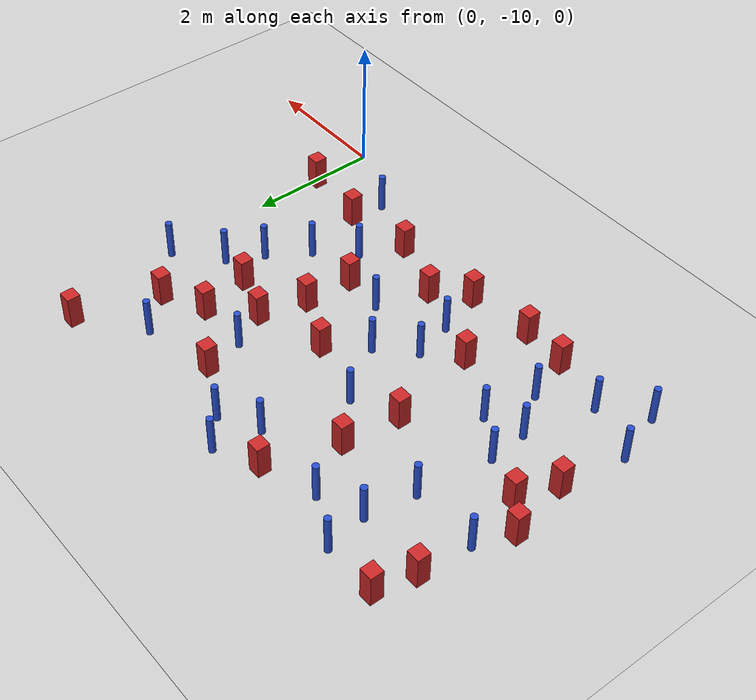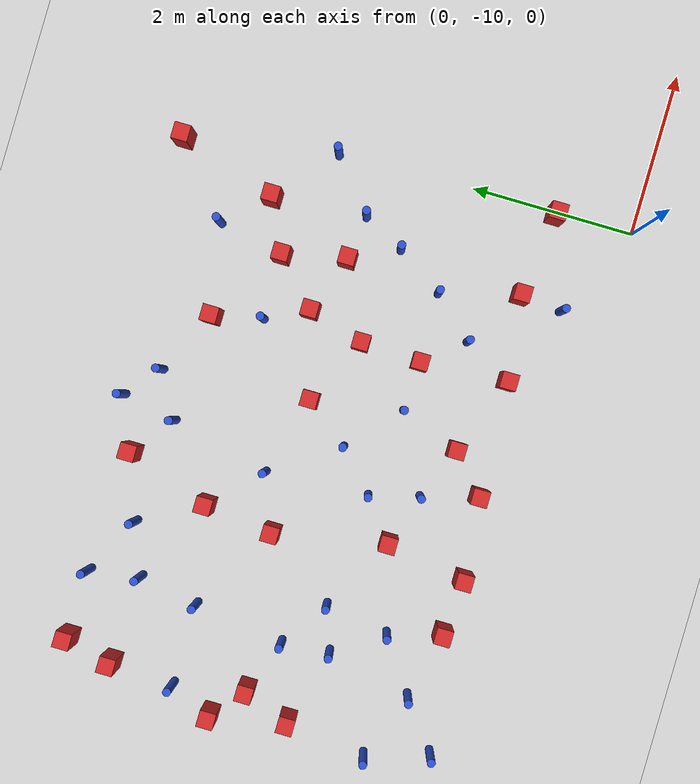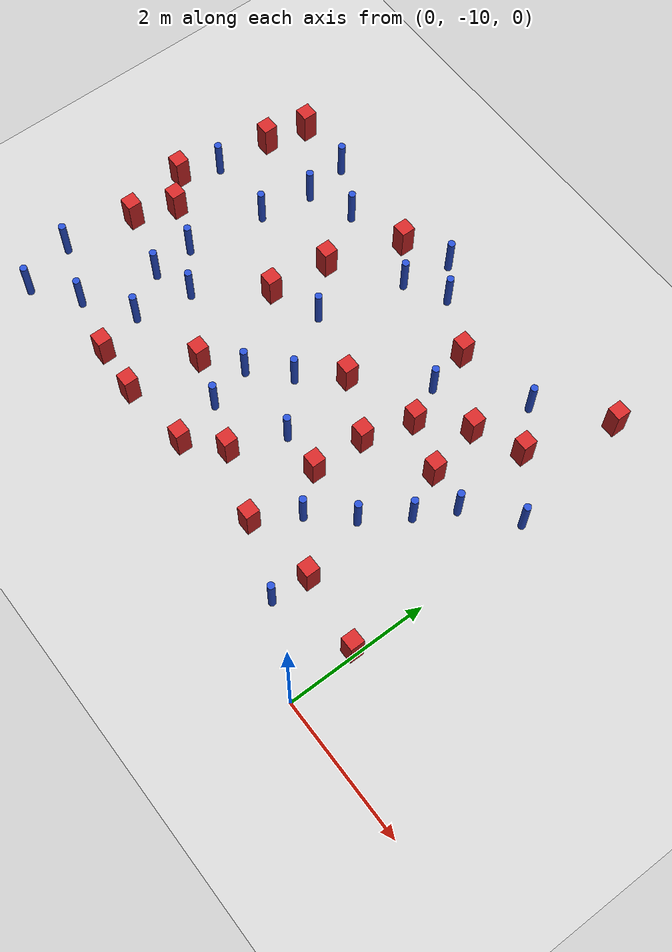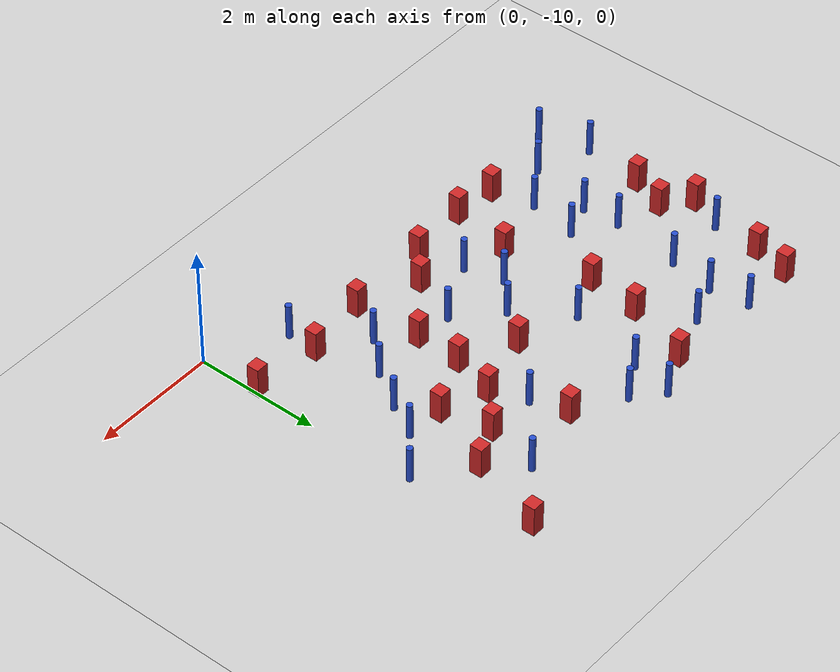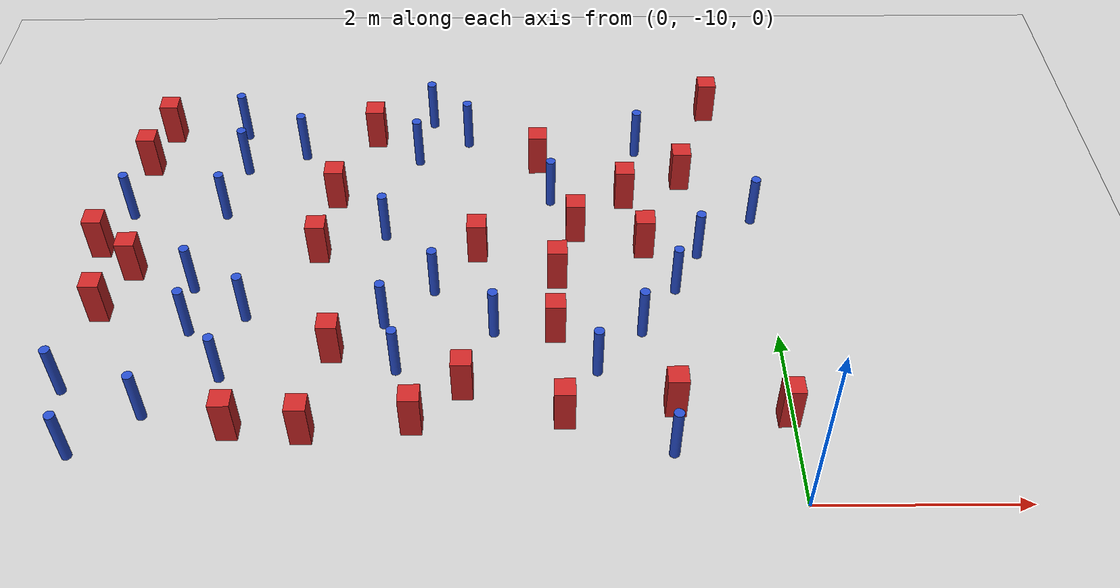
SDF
<sdf version="1.6">
 <world name="default">
  <model name="ground_plane">
   <static>1</static>
   <link name="link">
    <collision name="collision">
     <geometry><plane><normal>0 0 1</normal><size>100 100</size></plane></geometry>
     <surface><friction><ode><mu>100</mu><mu2>50</mu2></ode></friction></surface>
    </collision>
    <visual name="visual">
     <cast_shadows>0</cast_shadows>
     <geometry><plane><normal>0 0 1</normal><size>100 100</size></plane></geometry>
     <material>
      <ambient>1.0 1.0 1.0 1.0</ambient>
      <diffuse>0.8 0.8 0.8 1.0</diffuse>
      <specular>0.01 0.01 0.01 1.000000</specular>
     </material>
    </visual>
   </link>
  </model>
  <model name="square_post_obstacle1">
   <static>true</static>
   <pose>-4.67498980944 -6.82831575101 1.91545236811e-07 -7.35059704564e-06 1.12565212e-07 2.39332434364e-05</pose>
   <link name="link">
    <pose>0 0 0.25 0 -0 0</pose>
    <inertial>
     <mass>100</mass>
     <inertia>
      <ixx>0.166667</ixx>
      <ixy>0</ixy>
      <ixz>0</ixz>
      <iyy>0.166667</iyy>
      <iyz>0</iyz>
      <izz>0.166667</izz>
     </inertia>
    </inertial>
    <collision name="collision"><geometry><box><size>.2 .2 .5</size></box></geometry></collision>
    <visual name="visual">
     <geometry><box><size>.2 .2 .5</size></box></geometry>
     <material>
      <script><name>Gazebo/Red</name><uri>file://media/materials/scripts/gazebo.material</uri></script>
     </material>
    </visual>
   </link>
  </model>
  <model name="square_post_obstacle5">
   <static>true</static>
   <pose>-0.0569344833062 -9.03164974831 1.91545236811e-07 -7.35059704564e-06 1.12565212e-07 2.39332434364e-05</pose>
   <link name="link">
    <pose>0 0 0.25 0 -0 0</pose>
    <inertial>
     <mass>100</mass>
     <inertia>
      <ixx>0.166667</ixx>
      <ixy>0</ixy>
      <ixz>0</ixz>
      <iyy>0.166667</iyy>
      <iyz>0</iyz>
      <izz>0.166667</izz>
     </inertia>
    </inertial>
    <collision name="collision"><geometry><box><size>.2 .2 .5</size></box></geometry></collision>
    <visual name="visual">
     <geometry><box><size>.2 .2 .5</size></box></geometry>
     <material>
      <script><name>Gazebo/Red</name><uri>file://media/materials/scripts/gazebo.material</uri></script>
     </material>
    </visual>
   </link>
  </model>
  <model name="pole_obstacle12">
   <static>true</static>
   <pose>-5.4626077575 -8.49701745886 7.38925637345e-09 -8.471706928e-08 1.24976765081e-08 -1.74513093015e-07</pose>
   <link name="link">
    <pose>0 0 0.3 0 -0 0</pose>
    <inertial>
     <mass>1</mass>
     <inertia><ixx>0.145833</ixx><ixy>0</ixy><ixz>0</ixz><iyy>0.145833</iyy><iyz>0</iyz><izz>0.125</izz></inertia>
    </inertial>
    <collision name="collision">
     <geometry><cylinder><radius>0.05</radius><length>.6</length></cylinder></geometry>
    </collision>
    <visual name="visual">
     <geometry><cylinder><radius>0.05</radius><length>.6</length></cylinder></geometry>
     <material>
      <script><name>Gazebo/Blue</name><uri>file://media/materials/scripts/gazebo.material</uri></script>
     </material>
    </visual>
   </link>
  </model>
  <model name="square_post_obstacle12">
   <static>true</static>
   <pose>-1.10398348452 -8.89840903795 1.91545236811e-07 -7.35059704564e-06 1.12565212e-07 2.39332434364e-05</pose>
   <link name="link">
    <pose>0 0 0.25 0 -0 0</pose>
    <inertial>
     <mass>100</mass>
     <inertia>
      <ixx>0.166667</ixx>
      <ixy>0</ixy>
      <ixz>0</ixz>
      <iyy>0.166667</iyy>
      <iyz>0</iyz>
      <izz>0.166667</izz>
     </inertia>
    </inertial>
    <collision name="collision"><geometry><box><size>.2 .2 .5</size></box></geometry></collision>
    <visual name="visual">
     <geometry><box><size>.2 .2 .5</size></box></geometry>
     <material>
      <script><name>Gazebo/Red</name><uri>file://media/materials/scripts/gazebo.material</uri></script>
     </material>
    </visual>
   </link>
  </model>
  <model name="square_post_obstacle15">
   <static>true</static>
   <pose>-0.806000199674 -5.70891678703 1.91545236811e-07 -7.35059704564e-06 1.12565212e-07 2.39332434364e-05</pose>
   <link name="link">
    <pose>0 0 0.25 0 -0 0</pose>
    <inertial>
     <mass>100</mass>
     <inertia>
      <ixx>0.166667</ixx>
      <ixy>0</ixy>
      <ixz>0</ixz>
      <iyy>0.166667</iyy>
      <iyz>0</iyz>
      <izz>0.166667</izz>
     </inertia>
    </inertial>
    <collision name="collision"><geometry><box><size>.2 .2 .5</size></box></geometry></collision>
    <visual name="visual">
     <geometry><box><size>.2 .2 .5</size></box></geometry>
     <material>
      <script><name>Gazebo/Red</name><uri>file://media/materials/scripts/gazebo.material</uri></script>
     </material>
    </visual>
   </link>
  </model>
  <model name="pole_obstacle29">
   <static>true</static>
   <pose>-0.0772566071916 -6.3267778482 7.38925637345e-09 -8.47170692799e-08 1.24976765047e-08 -1.74513093018e-07</pose>
   <link name="link">
    <pose>0 0 0.3 0 -0 0</pose>
    <inertial>
     <mass>1</mass>
     <inertia><ixx>0.145833</ixx><ixy>0</ixy><ixz>0</ixz><iyy>0.145833</iyy><iyz>0</iyz><izz>0.125</izz></inertia>
    </inertial>
    <collision name="collision">
     <geometry><cylinder><radius>0.05</radius><length>.6</length></cylinder></geometry>
    </collision>
    <visual name="visual">
     <geometry><cylinder><radius>0.05</radius><length>.6</length></cylinder></geometry>
     <material>
      <script><name>Gazebo/Blue</name><uri>file://media/materials/scripts/gazebo.material</uri></script>
     </material>
    </visual>
   </link>
  </model>
  <model name="square_post_obstacle22">
   <static>true</static>
   <pose>-4.57320922168 -5.97788511213 1.91545236811e-07 -7.35059704564e-06 1.12565212e-07 2.39332434364e-05</pose>
   <link name="link">
    <pose>0 0 0.25 0 -0 0</pose>
    <inertial>
     <mass>100</mass>
     <inertia>
      <ixx>0.166667</ixx>
      <ixy>0</ixy>
      <ixz>0</ixz>
      <iyy>0.166667</iyy>
      <iyz>0</iyz>
      <izz>0.166667</izz>
     </inertia>
    </inertial>
    <collision name="collision"><geometry><box><size>.2 .2 .5</size></box></geometry></collision>
    <visual name="visual">
     <geometry><box><size>.2 .2 .5</size></box></geometry>
     <material>
      <script><name>Gazebo/Red</name><uri>file://media/materials/scripts/gazebo.material</uri></script>
     </material>
    </visual>
   </link>
  </model>
  <model name="pole_obstacle31">
   <static>true</static>
   <pose>-5.63412295739 -5.46343741275 7.38925637345e-09 -8.47170692796e-08 1.24976764786e-08 -1.74513093032e-07</pose>
   <link name="link">
    <pose>0 0 0.3 0 -0 0</pose>
    <inertial>
     <mass>1</mass>
     <inertia><ixx>0.145833</ixx><ixy>0</ixy><ixz>0</ixz><iyy>0.145833</iyy><iyz>0</iyz><izz>0.125</izz></inertia>
    </inertial>
    <collision name="collision">
     <geometry><cylinder><radius>0.05</radius><length>.6</length></cylinder></geometry>
    </collision>
    <visual name="visual">
     <geometry><cylinder><radius>0.05</radius><length>.6</length></cylinder></geometry>
     <material>
      <script><name>Gazebo/Blue</name><uri>file://media/materials/scripts/gazebo.material</uri></script>
     </material>
    </visual>
   </link>
  </model>
  <model name="pole_obstacle37">
   <static>true</static>
   <pose>-5.91470820341 -7.31046517119 7.38925637345e-09 -8.47170692796e-08 1.24976764786e-08 -1.74513093032e-07</pose>
   <link name="link">
    <pose>0 0 0.3 0 -0 0</pose>
    <inertial>
     <mass>1</mass>
     <inertia><ixx>0.145833</ixx><ixy>0</ixy><ixz>0</ixz><iyy>0.145833</iyy><iyz>0</iyz><izz>0.125</izz></inertia>
    </inertial>
    <collision name="collision">
     <geometry><cylinder><radius>0.05</radius><length>.6</length></cylinder></geometry>
    </collision>
    <visual name="visual">
     <geometry><cylinder><radius>0.05</radius><length>.6</length></cylinder></geometry>
     <material>
      <script><name>Gazebo/Blue</name><uri>file://media/materials/scripts/gazebo.material</uri></script>
     </material>
    </visual>
   </link>
  </model>
  <model name="square_post_obstacle33">
   <static>true</static>
   <pose>-3.5673624059 -9.09396639698 1.91545236811e-07 -7.35059704564e-06 1.12565212e-07 2.39332434364e-05</pose>
   <link name="link">
    <pose>0 0 0.25 0 -0 0</pose>
    <inertial>
     <mass>100</mass>
     <inertia>
      <ixx>0.166667</ixx>
      <ixy>0</ixy>
      <ixz>0</ixz>
      <iyy>0.166667</iyy>
      <iyz>0</iyz>
      <izz>0.166667</izz>
     </inertia>
    </inertial>
    <collision name="collision"><geometry><box><size>.2 .2 .5</size></box></geometry></collision>
    <visual name="visual">
     <geometry><box><size>.2 .2 .5</size></box></geometry>
     <material>
      <script><name>Gazebo/Red</name><uri>file://media/materials/scripts/gazebo.material</uri></script>
     </material>
    </visual>
   </link>
  </model>
  <model name="pole_obstacle48">
   <static>true</static>
   <pose>-3.44367314999 -7.36795932282 7.38925637345e-09 -8.47170692798e-08 1.24976765033e-08 -1.74513093019e-07</pose>
   <link name="link">
    <pose>0 0 0.3 0 -0 0</pose>
    <inertial>
     <mass>1</mass>
     <inertia><ixx>0.145833</ixx><ixy>0</ixy><ixz>0</ixz><iyy>0.145833</iyy><iyz>0</iyz><izz>0.125</izz></inertia>
    </inertial>
    <collision name="collision">
     <geometry><cylinder><radius>0.05</radius><length>.6</length></cylinder></geometry>
    </collision>
    <visual name="visual">
     <geometry><cylinder><radius>0.05</radius><length>.6</length></cylinder></geometry>
     <material>
      <script><name>Gazebo/Blue</name><uri>file://media/materials/scripts/gazebo.material</uri></script>
     </material>
    </visual>
   </link>
  </model>
  <model name="pole_obstacle52">
   <static>true</static>
   <pose>-5.7300568943 -4.84075058531 7.38925637345e-09 -8.47170692796e-08 1.24976764786e-08 -1.74513093032e-07</pose>
   <link name="link">
    <pose>0 0 0.3 0 -0 0</pose>
    <inertial>
     <mass>1</mass>
     <inertia><ixx>0.145833</ixx><ixy>0</ixy><ixz>0</ixz><iyy>0.145833</iyy><iyz>0</iyz><izz>0.125</izz></inertia>
    </inertial>
    <collision name="collision">
     <geometry><cylinder><radius>0.05</radius><length>.6</length></cylinder></geometry>
    </collision>
    <visual name="visual">
     <geometry><cylinder><radius>0.05</radius><length>.6</length></cylinder></geometry>
     <material>
      <script><name>Gazebo/Blue</name><uri>file://media/materials/scripts/gazebo.material</uri></script>
     </material>
    </visual>
   </link>
  </model>
  <model name="pole_obstacle61">
   <static>true</static>
   <pose>-0.705357612804 -6.8557861656 7.38925637345e-09 -8.471706928e-08 1.24976765086e-08 -1.74513093015e-07</pose>
   <link name="link">
    <pose>0 0 0.3 0 -0 0</pose>
    <inertial>
     <mass>1</mass>
     <inertia><ixx>0.145833</ixx><ixy>0</ixy><ixz>0</ixz><iyy>0.145833</iyy><iyz>0</iyz><izz>0.125</izz></inertia>
    </inertial>
    <collision name="collision">
     <geometry><cylinder><radius>0.05</radius><length>.6</length></cylinder></geometry>
    </collision>
    <visual name="visual">
     <geometry><cylinder><radius>0.05</radius><length>.6</length></cylinder></geometry>
     <material>
      <script><name>Gazebo/Blue</name><uri>file://media/materials/scripts/gazebo.material</uri></script>
     </material>
    </visual>
   </link>
  </model>
  <model name="square_post_obstacle47">
   <static>true</static>
   <pose>-4.21569209448 -4.94015472353 1.91545236811e-07 -7.35059704564e-06 1.12565212e-07 2.39332434364e-05</pose>
   <link name="link">
    <pose>0 0 0.25 0 -0 0</pose>
    <inertial>
     <mass>100</mass>
     <inertia>
      <ixx>0.166667</ixx>
      <ixy>0</ixy>
      <ixz>0</ixz>
      <iyy>0.166667</iyy>
      <iyz>0</iyz>
      <izz>0.166667</izz>
     </inertia>
    </inertial>
    <collision name="collision"><geometry><box><size>.2 .2 .5</size></box></geometry></collision>
    <visual name="visual">
     <geometry><box><size>.2 .2 .5</size></box></geometry>
     <material>
      <script><name>Gazebo/Red</name><uri>file://media/materials/scripts/gazebo.material</uri></script>
     </material>
    </visual>
   </link>
  </model>
  <model name="square_post_obstacle56">
   <static>true</static>
   <pose>-2.21653575165 -7.96495628618 1.91545236811e-07 -7.35059704564e-06 1.12565212e-07 2.39332434364e-05</pose>
   <link name="link">
    <pose>0 0 0.25 0 -0 0</pose>
    <inertial>
     <mass>100</mass>
     <inertia>
      <ixx>0.166667</ixx>
      <ixy>0</ixy>
      <ixz>0</ixz>
      <iyy>0.166667</iyy>
      <iyz>0</iyz>
      <izz>0.166667</izz>
     </inertia>
    </inertial>
    <collision name="collision"><geometry><box><size>.2 .2 .5</size></box></geometry></collision>
    <visual name="visual">
     <geometry><box><size>.2 .2 .5</size></box></geometry>
     <material>
      <script><name>Gazebo/Red</name><uri>file://media/materials/scripts/gazebo.material</uri></script>
     </material>
    </visual>
   </link>
  </model>
  <model name="pole_obstacle73">
   <static>true</static>
   <pose>-1.35263235997 -7.94637558437 7.38925637345e-09 -8.47170692799e-08 1.24976765033e-08 -1.74513093018e-07</pose>
   <link name="link">
    <pose>0 0 0.3 0 -0 0</pose>
    <inertial>
     <mass>1</mass>
     <inertia><ixx>0.145833</ixx><ixy>0</ixy><ixz>0</ixz><iyy>0.145833</iyy><iyz>0</iyz><izz>0.125</izz></inertia>
    </inertial>
    <collision name="collision">
     <geometry><cylinder><radius>0.05</radius><length>.6</length></cylinder></geometry>
    </collision>
    <visual name="visual">
     <geometry><cylinder><radius>0.05</radius><length>.6</length></cylinder></geometry>
     <material>
      <script><name>Gazebo/Blue</name><uri>file://media/materials/scripts/gazebo.material</uri></script>
     </material>
    </visual>
   </link>
  </model>
  <model name="pole_obstacle84">
   <static>true</static>
   <pose>-5.76072703257 -6.19977281902 7.38925637345e-09 -8.47170692796e-08 1.24976764786e-08 -1.74513093032e-07</pose>
   <link name="link">
    <pose>0 0 0.3 0 -0 0</pose>
    <inertial>
     <mass>1</mass>
     <inertia><ixx>0.145833</ixx><ixy>0</ixy><ixz>0</ixz><iyy>0.145833</iyy><iyz>0</iyz><izz>0.125</izz></inertia>
    </inertial>
    <collision name="collision">
     <geometry><cylinder><radius>0.05</radius><length>.6</length></cylinder></geometry>
    </collision>
    <visual name="visual">
     <geometry><cylinder><radius>0.05</radius><length>.6</length></cylinder></geometry>
     <material>
      <script><name>Gazebo/Blue</name><uri>file://media/materials/scripts/gazebo.material</uri></script>
     </material>
    </visual>
   </link>
  </model>
  <model name="square_post_obstacle74">
   <static>true</static>
   <pose>-6.56219991522 -4.83039880466 1.91545236811e-07 -7.35059704564e-06 1.12565212e-07 2.39332434364e-05</pose>
   <link name="link">
    <pose>0 0 0.25 0 -0 0</pose>
    <inertial>
     <mass>100</mass>
     <inertia>
      <ixx>0.166667</ixx>
      <ixy>0</ixy>
      <ixz>0</ixz>
      <iyy>0.166667</iyy>
      <iyz>0</iyz>
      <izz>0.166667</izz>
     </inertia>
    </inertial>
    <collision name="collision"><geometry><box><size>.2 .2 .5</size></box></geometry></collision>
    <visual name="visual">
     <geometry><box><size>.2 .2 .5</size></box></geometry>
     <material>
      <script><name>Gazebo/Red</name><uri>file://media/materials/scripts/gazebo.material</uri></script>
     </material>
    </visual>
   </link>
  </model>
  <model name="pole_obstacle90">
   <static>true</static>
   <pose>-5.32653967156 -7.70868877962 7.38925637345e-09 -8.47170692796e-08 1.24976764786e-08 -1.74513093032e-07</pose>
   <link name="link">
    <pose>0 0 0.3 0 -0 0</pose>
    <inertial>
     <mass>1</mass>
     <inertia><ixx>0.145833</ixx><ixy>0</ixy><ixz>0</ixz><iyy>0.145833</iyy><iyz>0</iyz><izz>0.125</izz></inertia>
    </inertial>
    <collision name="collision">
     <geometry><cylinder><radius>0.05</radius><length>.6</length></cylinder></geometry>
    </collision>
    <visual name="visual">
     <geometry><cylinder><radius>0.05</radius><length>.6</length></cylinder></geometry>
     <material>
      <script><name>Gazebo/Blue</name><uri>file://media/materials/scripts/gazebo.material</uri></script>
     </material>
    </visual>
   </link>
  </model>
  <model name="pole_obstacle93">
   <static>true</static>
   <pose>-1.81551912065 -8.44724715865 7.38925637345e-09 -8.47170692798e-08 1.24976764881e-08 -1.74513093027e-07</pose>
   <link name="link">
    <pose>0 0 0.3 0 -0 0</pose>
    <inertial>
     <mass>1</mass>
     <inertia><ixx>0.145833</ixx><ixy>0</ixy><ixz>0</ixz><iyy>0.145833</iyy><iyz>0</iyz><izz>0.125</izz></inertia>
    </inertial>
    <collision name="collision">
     <geometry><cylinder><radius>0.05</radius><length>.6</length></cylinder></geometry>
    </collision>
    <visual name="visual">
     <geometry><cylinder><radius>0.05</radius><length>.6</length></cylinder></geometry>
     <material>
      <script><name>Gazebo/Blue</name><uri>file://media/materials/scripts/gazebo.material</uri></script>
     </material>
    </visual>
   </link>
  </model>
  <model name="square_post_obstacle88">
   <static>true</static>
   <pose>-2.37762121006 -5.41292113218 1.91545236811e-07 -7.35059704564e-06 1.12565212e-07 2.39332434364e-05</pose>
   <link name="link">
    <pose>0 0 0.25 0 -0 0</pose>
    <inertial>
     <mass>100</mass>
     <inertia>
      <ixx>0.166667</ixx>
      <ixy>0</ixy>
      <ixz>0</ixz>
      <iyy>0.166667</iyy>
      <iyz>0</iyz>
      <izz>0.166667</izz>
     </inertia>
    </inertial>
    <collision name="collision"><geometry><box><size>.2 .2 .5</size></box></geometry></collision>
    <visual name="visual">
     <geometry><box><size>.2 .2 .5</size></box></geometry>
     <material>
      <script><name>Gazebo/Red</name><uri>file://media/materials/scripts/gazebo.material</uri></script>
     </material>
    </visual>
   </link>
  </model>
  <model name="pole_obstacle96">
   <static>true</static>
   <pose>-2.23942535714 -6.00915001634 7.38925637345e-09 -8.47170692798e-08 1.24976765033e-08 -1.74513093019e-07</pose>
   <link name="link">
    <pose>0 0 0.3 0 -0 0</pose>
    <inertial>
     <mass>1</mass>
     <inertia><ixx>0.145833</ixx><ixy>0</ixy><ixz>0</ixz><iyy>0.145833</iyy><iyz>0</iyz><izz>0.125</izz></inertia>
    </inertial>
    <collision name="collision">
     <geometry><cylinder><radius>0.05</radius><length>.6</length></cylinder></geometry>
    </collision>
    <visual name="visual">
     <geometry><cylinder><radius>0.05</radius><length>.6</length></cylinder></geometry>
     <material>
      <script><name>Gazebo/Blue</name><uri>file://media/materials/scripts/gazebo.material</uri></script>
     </material>
    </visual>
   </link>
  </model>
  <model name="pole_obstacle105">
   <static>true</static>
   <pose>-3.16610420422 -5.00560858575 7.38925637345e-09 -8.47170692798e-08 1.24976765033e-08 -1.74513093019e-07</pose>
   <link name="link">
    <pose>0 0 0.3 0 -0 0</pose>
    <inertial>
     <mass>1</mass>
     <inertia><ixx>0.145833</ixx><ixy>0</ixy><ixz>0</ixz><iyy>0.145833</iyy><iyz>0</iyz><izz>0.125</izz></inertia>
    </inertial>
    <collision name="collision">
     <geometry><cylinder><radius>0.05</radius><length>.6</length></cylinder></geometry>
    </collision>
    <visual name="visual">
     <geometry><cylinder><radius>0.05</radius><length>.6</length></cylinder></geometry>
     <material>
      <script><name>Gazebo/Blue</name><uri>file://media/materials/scripts/gazebo.material</uri></script>
     </material>
    </visual>
   </link>
  </model>
  <model name="square_post_obstacle100">
   <static>true</static>
   <pose>-5.26530152345 -9.13641427341 1.91545236811e-07 -7.35059704564e-06 1.12565212e-07 2.39332434364e-05</pose>
   <link name="link">
    <pose>0 0 0.25 0 -0 0</pose>
    <inertial>
     <mass>100</mass>
     <inertia>
      <ixx>0.166667</ixx>
      <ixy>0</ixy>
      <ixz>0</ixz>
      <iyy>0.166667</iyy>
      <iyz>0</iyz>
      <izz>0.166667</izz>
     </inertia>
    </inertial>
    <collision name="collision"><geometry><box><size>.2 .2 .5</size></box></geometry></collision>
    <visual name="visual">
     <geometry><box><size>.2 .2 .5</size></box></geometry>
     <material>
      <script><name>Gazebo/Red</name><uri>file://media/materials/scripts/gazebo.material</uri></script>
     </material>
    </visual>
   </link>
  </model>
  <model name="pole_obstacle108">
   <static>true</static>
   <pose>-6.76949113717 -6.19482490507 7.38925637345e-09 -8.47170692796e-08 1.24976764786e-08 -1.74513093032e-07</pose>
   <link name="link">
    <pose>0 0 0.3 0 -0 0</pose>
    <inertial>
     <mass>1</mass>
     <inertia><ixx>0.145833</ixx><ixy>0</ixy><ixz>0</ixz><iyy>0.145833</iyy><iyz>0</iyz><izz>0.125</izz></inertia>
    </inertial>
    <collision name="collision">
     <geometry><cylinder><radius>0.05</radius><length>.6</length></cylinder></geometry>
    </collision>
    <visual name="visual">
     <geometry><cylinder><radius>0.05</radius><length>.6</length></cylinder></geometry>
     <material>
      <script><name>Gazebo/Blue</name><uri>file://media/materials/scripts/gazebo.material</uri></script>
     </material>
    </visual>
   </link>
  </model>
  <model name="pole_obstacle111">
   <static>true</static>
   <pose>-1.26920511881 -5.18857553138 7.38925637345e-09 -8.47170692799e-08 1.24976765033e-08 -1.74513093018e-07</pose>
   <link name="link">
    <pose>0 0 0.3 0 -0 0</pose>
    <inertial>
     <mass>1</mass>
     <inertia><ixx>0.145833</ixx><ixy>0</ixy><ixz>0</ixz><iyy>0.145833</iyy><iyz>0</iyz><izz>0.125</izz></inertia>
    </inertial>
    <collision name="collision">
     <geometry><cylinder><radius>0.05</radius><length>.6</length></cylinder></geometry>
    </collision>
    <visual name="visual">
     <geometry><cylinder><radius>0.05</radius><length>.6</length></cylinder></geometry>
     <material>
      <script><name>Gazebo/Blue</name><uri>file://media/materials/scripts/gazebo.material</uri></script>
     </material>
    </visual>
   </link>
  </model>
  <model name="square_post_obstacle111">
   <static>true</static>
   <pose>-2.14747889558 -9.03453597975 1.91545236811e-07 -7.35059704564e-06 1.12565212e-07 2.39332434364e-05</pose>
   <link name="link">
    <pose>0 0 0.25 0 -0 0</pose>
    <inertial>
     <mass>100</mass>
     <inertia>
      <ixx>0.166667</ixx>
      <ixy>0</ixy>
      <ixz>0</ixz>
      <iyy>0.166667</iyy>
      <iyz>0</iyz>
      <izz>0.166667</izz>
     </inertia>
    </inertial>
    <collision name="collision"><geometry><box><size>.2 .2 .5</size></box></geometry></collision>
    <visual name="visual">
     <geometry><box><size>.2 .2 .5</size></box></geometry>
     <material>
      <script><name>Gazebo/Red</name><uri>file://media/materials/scripts/gazebo.material</uri></script>
     </material>
    </visual>
   </link>
  </model>
  <model name="square_post_obstacle118">
   <static>true</static>
   <pose>-1.4409567332 -6.01534267105 1.91545236811e-07 -7.35059704564e-06 1.12565212e-07 2.39332434364e-05</pose>
   <link name="link">
    <pose>0 0 0.25 0 -0 0</pose>
    <inertial>
     <mass>100</mass>
     <inertia>
      <ixx>0.166667</ixx>
      <ixy>0</ixy>
      <ixz>0</ixz>
      <iyy>0.166667</iyy>
      <iyz>0</iyz>
      <izz>0.166667</izz>
     </inertia>
    </inertial>
    <collision name="collision"><geometry><box><size>.2 .2 .5</size></box></geometry></collision>
    <visual name="visual">
     <geometry><box><size>.2 .2 .5</size></box></geometry>
     <material>
      <script><name>Gazebo/Red</name><uri>file://media/materials/scripts/gazebo.material</uri></script>
     </material>
    </visual>
   </link>
  </model>
  <model name="pole_obstacle120">
   <static>true</static>
   <pose>-3.58205869978 -4.64731659598 7.38925637345e-09 -8.47170692794e-08 1.24976764468e-08 -1.7451309304e-07</pose>
   <link name="link">
    <pose>0 0 0.3 0 -0 0</pose>
    <inertial>
     <mass>1</mass>
     <inertia><ixx>0.145833</ixx><ixy>0</ixy><ixz>0</ixz><iyy>0.145833</iyy><iyz>0</iyz><izz>0.125</izz></inertia>
    </inertial>
    <collision name="collision">
     <geometry><cylinder><radius>0.05</radius><length>.6</length></cylinder></geometry>
    </collision>
    <visual name="visual">
     <geometry><cylinder><radius>0.05</radius><length>.6</length></cylinder></geometry>
     <material>
      <script><name>Gazebo/Blue</name><uri>file://media/materials/scripts/gazebo.material</uri></script>
     </material>
    </visual>
   </link>
  </model>
  <model name="pole_obstacle129">
   <static>true</static>
   <pose>-6.69728284218 -9.3980638872 7.38925637345e-09 -8.471706928e-08 1.24976765081e-08 -1.74513093015e-07</pose>
   <link name="link">
    <pose>0 0 0.3 0 -0 0</pose>
    <inertial>
     <mass>1</mass>
     <inertia><ixx>0.145833</ixx><ixy>0</ixy><ixz>0</ixz><iyy>0.145833</iyy><iyz>0</iyz><izz>0.125</izz></inertia>
    </inertial>
    <collision name="collision">
     <geometry><cylinder><radius>0.05</radius><length>.6</length></cylinder></geometry>
    </collision>
    <visual name="visual">
     <geometry><cylinder><radius>0.05</radius><length>.6</length></cylinder></geometry>
     <material>
      <script><name>Gazebo/Blue</name><uri>file://media/materials/scripts/gazebo.material</uri></script>
     </material>
    </visual>
   </link>
  </model>
  <model name="pole_obstacle141">
   <static>true</static>
   <pose>-2.82531869772 -7.9393461767 7.38925637345e-09 -8.47170692798e-08 1.24976765033e-08 -1.74513093019e-07</pose>
   <link name="link">
    <pose>0 0 0.3 0 -0 0</pose>
    <inertial>
     <mass>1</mass>
     <inertia><ixx>0.145833</ixx><ixy>0</ixy><ixz>0</ixz><iyy>0.145833</iyy><iyz>0</iyz><izz>0.125</izz></inertia>
    </inertial>
    <collision name="collision">
     <geometry><cylinder><radius>0.05</radius><length>.6</length></cylinder></geometry>
    </collision>
    <visual name="visual">
     <geometry><cylinder><radius>0.05</radius><length>.6</length></cylinder></geometry>
     <material>
      <script><name>Gazebo/Blue</name><uri>file://media/materials/scripts/gazebo.material</uri></script>
     </material>
    </visual>
   </link>
  </model>
  <model name="square_post_obstacle139">
   <static>true</static>
   <pose>-0.413697934901 -4.49266319689 1.91545236811e-07 -7.35059704564e-06 1.12565212e-07 2.39332434364e-05</pose>
   <link name="link">
    <pose>0 0 0.25 0 -0 0</pose>
    <inertial>
     <mass>100</mass>
     <inertia>
      <ixx>0.166667</ixx>
      <ixy>0</ixy>
      <ixz>0</ixz>
      <iyy>0.166667</iyy>
      <iyz>0</iyz>
      <izz>0.166667</izz>
     </inertia>
    </inertial>
    <collision name="collision"><geometry><box><size>.2 .2 .5</size></box></geometry></collision>
    <visual name="visual">
     <geometry><box><size>.2 .2 .5</size></box></geometry>
     <material>
      <script><name>Gazebo/Red</name><uri>file://media/materials/scripts/gazebo.material</uri></script>
     </material>
    </visual>
   </link>
  </model>
  <model name="square_post_obstacle140">
   <static>true</static>
   <pose>-6.70566130304 -5.41041761863 1.91545236811e-07 -7.35059704564e-06 1.12565212e-07 2.39332434364e-05</pose>
   <link name="link">
    <pose>0 0 0.25 0 -0 0</pose>
    <inertial>
     <mass>100</mass>
     <inertia>
      <ixx>0.166667</ixx>
      <ixy>0</ixy>
      <ixz>0</ixz>
      <iyy>0.166667</iyy>
      <iyz>0</iyz>
      <izz>0.166667</izz>
     </inertia>
    </inertial>
    <collision name="collision"><geometry><box><size>.2 .2 .5</size></box></geometry></collision>
    <visual name="visual">
     <geometry><box><size>.2 .2 .5</size></box></geometry>
     <material>
      <script><name>Gazebo/Red</name><uri>file://media/materials/scripts/gazebo.material</uri></script>
     </material>
    </visual>
   </link>
  </model>
  <model name="pole_obstacle149">
   <static>true</static>
   <pose>-0.975459394236 -7.36558238332 7.38925637345e-09 -8.47170692799e-08 1.2497676509e-08 -1.74513093015e-07</pose>
   <link name="link">
    <pose>0 0 0.3 0 -0 0</pose>
    <inertial>
     <mass>1</mass>
     <inertia><ixx>0.145833</ixx><ixy>0</ixy><ixz>0</ixz><iyy>0.145833</iyy><iyz>0</iyz><izz>0.125</izz></inertia>
    </inertial>
    <collision name="collision">
     <geometry><cylinder><radius>0.05</radius><length>.6</length></cylinder></geometry>
    </collision>
    <visual name="visual">
     <geometry><cylinder><radius>0.05</radius><length>.6</length></cylinder></geometry>
     <material>
      <script><name>Gazebo/Blue</name><uri>file://media/materials/scripts/gazebo.material</uri></script>
     </material>
    </visual>
   </link>
  </model>
  <model name="pole_obstacle153">
   <static>true</static>
   <pose>-5.86528783506 -7.89803661114 7.38925637345e-09 -8.47170692796e-08 1.24976764786e-08 -1.74513093032e-07</pose>
   <link name="link">
    <pose>0 0 0.3 0 -0 0</pose>
    <inertial>
     <mass>1</mass>
     <inertia><ixx>0.145833</ixx><ixy>0</ixy><ixz>0</ixz><iyy>0.145833</iyy><iyz>0</iyz><izz>0.125</izz></inertia>
    </inertial>
    <collision name="collision">
     <geometry><cylinder><radius>0.05</radius><length>.6</length></cylinder></geometry>
    </collision>
    <visual name="visual">
     <geometry><cylinder><radius>0.05</radius><length>.6</length></cylinder></geometry>
     <material>
      <script><name>Gazebo/Blue</name><uri>file://media/materials/scripts/gazebo.material</uri></script>
     </material>
    </visual>
   </link>
  </model>
  <model name="pole_obstacle159">
   <static>true</static>
   <pose>-3.92512927078 -7.8171857841 7.38925637345e-09 -8.47170692794e-08 1.24976764468e-08 -1.7451309304e-07</pose>
   <link name="link">
    <pose>0 0 0.3 0 -0 0</pose>
    <inertial>
     <mass>1</mass>
     <inertia><ixx>0.145833</ixx><ixy>0</ixy><ixz>0</ixz><iyy>0.145833</iyy><iyz>0</iyz><izz>0.125</izz></inertia>
    </inertial>
    <collision name="collision">
     <geometry><cylinder><radius>0.05</radius><length>.6</length></cylinder></geometry>
    </collision>
    <visual name="visual">
     <geometry><cylinder><radius>0.05</radius><length>.6</length></cylinder></geometry>
     <material>
      <script><name>Gazebo/Blue</name><uri>file://media/materials/scripts/gazebo.material</uri></script>
     </material>
    </visual>
   </link>
  </model>
  <model name="square_post_obstacle154">
   <static>true</static>
   <pose>-6.57184686783 -7.06440463111 1.91545236811e-07 -7.35059704564e-06 1.12565212e-07 2.39332434364e-05</pose>
   <link name="link">
    <pose>0 0 0.25 0 -0 0</pose>
    <inertial>
     <mass>100</mass>
     <inertia>
      <ixx>0.166667</ixx>
      <ixy>0</ixy>
      <ixz>0</ixz>
      <iyy>0.166667</iyy>
      <iyz>0</iyz>
      <izz>0.166667</izz>
     </inertia>
    </inertial>
    <collision name="collision"><geometry><box><size>.2 .2 .5</size></box></geometry></collision>
    <visual name="visual">
     <geometry><box><size>.2 .2 .5</size></box></geometry>
     <material>
      <script><name>Gazebo/Red</name><uri>file://media/materials/scripts/gazebo.material</uri></script>
     </material>
    </visual>
   </link>
  </model>
  <model name="square_post_obstacle159">
   <static>true</static>
   <pose>-3.0150473099 -6.82741249075 1.91545236811e-07 -7.35059704564e-06 1.12565212e-07 2.39332434364e-05</pose>
   <link name="link">
    <pose>0 0 0.25 0 -0 0</pose>
    <inertial>
     <mass>100</mass>
     <inertia>
      <ixx>0.166667</ixx>
      <ixy>0</ixy>
      <ixz>0</ixz>
      <iyy>0.166667</iyy>
      <iyz>0</iyz>
      <izz>0.166667</izz>
     </inertia>
    </inertial>
    <collision name="collision"><geometry><box><size>.2 .2 .5</size></box></geometry></collision>
    <visual name="visual">
     <geometry><box><size>.2 .2 .5</size></box></geometry>
     <material>
      <script><name>Gazebo/Red</name><uri>file://media/materials/scripts/gazebo.material</uri></script>
     </material>
    </visual>
   </link>
  </model>
  <model name="pole_obstacle167">
   <static>true</static>
   <pose>-6.11054406882 -8.94883008701 7.38925637345e-09 -8.471706928e-08 1.24976765081e-08 -1.74513093015e-07</pose>
   <link name="link">
    <pose>0 0 0.3 0 -0 0</pose>
    <inertial>
     <mass>1</mass>
     <inertia><ixx>0.145833</ixx><ixy>0</ixy><ixz>0</ixz><iyy>0.145833</iyy><iyz>0</iyz><izz>0.125</izz></inertia>
    </inertial>
    <collision name="collision">
     <geometry><cylinder><radius>0.05</radius><length>.6</length></cylinder></geometry>
    </collision>
    <visual name="visual">
     <geometry><cylinder><radius>0.05</radius><length>.6</length></cylinder></geometry>
     <material>
      <script><name>Gazebo/Blue</name><uri>file://media/materials/scripts/gazebo.material</uri></script>
     </material>
    </visual>
   </link>
  </model>
  <model name="square_post_obstacle172">
   <static>true</static>
   <pose>-2.18722450258 -7.22282165809 1.91545236811e-07 -7.35059704564e-06 1.12565212e-07 2.39332434364e-05</pose>
   <link name="link">
    <pose>0 0 0.25 0 -0 0</pose>
    <inertial>
     <mass>100</mass>
     <inertia>
      <ixx>0.166667</ixx>
      <ixy>0</ixy>
      <ixz>0</ixz>
      <iyy>0.166667</iyy>
      <iyz>0</iyz>
      <izz>0.166667</izz>
     </inertia>
    </inertial>
    <collision name="collision"><geometry><box><size>.2 .2 .5</size></box></geometry></collision>
    <visual name="visual">
     <geometry><box><size>.2 .2 .5</size></box></geometry>
     <material>
      <script><name>Gazebo/Red</name><uri>file://media/materials/scripts/gazebo.material</uri></script>
     </material>
    </visual>
   </link>
  </model>
  <model name="pole_obstacle179">
   <static>true</static>
   <pose>-3.71447414491 -5.32259435653 7.38925637345e-09 -8.47170692794e-08 1.24976764468e-08 -1.7451309304e-07</pose>
   <link name="link">
    <pose>0 0 0.3 0 -0 0</pose>
    <inertial>
     <mass>1</mass>
     <inertia><ixx>0.145833</ixx><ixy>0</ixy><ixz>0</ixz><iyy>0.145833</iyy><iyz>0</iyz><izz>0.125</izz></inertia>
    </inertial>
    <collision name="collision">
     <geometry><cylinder><radius>0.05</radius><length>.6</length></cylinder></geometry>
    </collision>
    <visual name="visual">
     <geometry><cylinder><radius>0.05</radius><length>.6</length></cylinder></geometry>
     <material>
      <script><name>Gazebo/Blue</name><uri>file://media/materials/scripts/gazebo.material</uri></script>
     </material>
    </visual>
   </link>
  </model>
  <model name="pole_obstacle180">
   <static>true</static>
   <pose>-4.00343166631 -6.54936500672 7.38925637345e-09 -8.47170692795e-08 1.24976764731e-08 -1.74513093035e-07</pose>
   <link name="link">
    <pose>0 0 0.3 0 -0 0</pose>
    <inertial>
     <mass>1</mass>
     <inertia><ixx>0.145833</ixx><ixy>0</ixy><ixz>0</ixz><iyy>0.145833</iyy><iyz>0</iyz><izz>0.125</izz></inertia>
    </inertial>
    <collision name="collision">
     <geometry><cylinder><radius>0.05</radius><length>.6</length></cylinder></geometry>
    </collision>
    <visual name="visual">
     <geometry><cylinder><radius>0.05</radius><length>.6</length></cylinder></geometry>
     <material>
      <script><name>Gazebo/Blue</name><uri>file://media/materials/scripts/gazebo.material</uri></script>
     </material>
    </visual>
   </link>
  </model>
  <model name="pole_obstacle182">
   <static>true</static>
   <pose>-5.01125298723 -5.21522491232 7.38925637345e-09 -8.47170692796e-08 1.24976764786e-08 -1.74513093032e-07</pose>
   <link name="link">
    <pose>0 0 0.3 0 -0 0</pose>
    <inertial>
     <mass>1</mass>
     <inertia><ixx>0.145833</ixx><ixy>0</ixy><ixz>0</ixz><iyy>0.145833</iyy><iyz>0</iyz><izz>0.125</izz></inertia>
    </inertial>
    <collision name="collision">
     <geometry><cylinder><radius>0.05</radius><length>.6</length></cylinder></geometry>
    </collision>
    <visual name="visual">
     <geometry><cylinder><radius>0.05</radius><length>.6</length></cylinder></geometry>
     <material>
      <script><name>Gazebo/Blue</name><uri>file://media/materials/scripts/gazebo.material</uri></script>
     </material>
    </visual>
   </link>
  </model>
  <model name="square_post_obstacle182">
   <static>true</static>
   <pose>-6.79292377379 -7.63937222254 1.91545236811e-07 -7.35059704564e-06 1.12565212e-07 2.39332434364e-05</pose>
   <link name="link">
    <pose>0 0 0.25 0 -0 0</pose>
    <inertial>
     <mass>100</mass>
     <inertia>
      <ixx>0.166667</ixx>
      <ixy>0</ixy>
      <ixz>0</ixz>
      <iyy>0.166667</iyy>
      <iyz>0</iyz>
      <izz>0.166667</izz>
     </inertia>
    </inertial>
    <collision name="collision"><geometry><box><size>.2 .2 .5</size></box></geometry></collision>
    <visual name="visual">
     <geometry><box><size>.2 .2 .5</size></box></geometry>
     <material>
      <script><name>Gazebo/Red</name><uri>file://media/materials/scripts/gazebo.material</uri></script>
     </material>
    </visual>
   </link>
  </model>
  <model name="square_post_obstacle185">
   <static>true</static>
   <pose>-1.26898765025 -6.78559665253 1.91545236811e-07 -7.35059704564e-06 1.12565212e-07 2.39332434364e-05</pose>
   <link name="link">
    <pose>0 0 0.25 0 -0 0</pose>
    <inertial>
     <mass>100</mass>
     <inertia>
      <ixx>0.166667</ixx>
      <ixy>0</ixy>
      <ixz>0</ixz>
      <iyy>0.166667</iyy>
      <iyz>0</iyz>
      <izz>0.166667</izz>
     </inertia>
    </inertial>
    <collision name="collision"><geometry><box><size>.2 .2 .5</size></box></geometry></collision>
    <visual name="visual">
     <geometry><box><size>.2 .2 .5</size></box></geometry>
     <material>
      <script><name>Gazebo/Red</name><uri>file://media/materials/scripts/gazebo.material</uri></script>
     </material>
    </visual>
   </link>
  </model>
  <model name="square_post_obstacle187">
   <static>true</static>
   <pose>-4.5755198247 -9.19277192351 1.91545236811e-07 -7.35059704564e-06 1.12565212e-07 2.39332434364e-05</pose>
   <link name="link">
    <pose>0 0 0.25 0 -0 0</pose>
    <inertial>
     <mass>100</mass>
     <inertia>
      <ixx>0.166667</ixx>
      <ixy>0</ixy>
      <ixz>0</ixz>
      <iyy>0.166667</iyy>
      <iyz>0</iyz>
      <izz>0.166667</izz>
     </inertia>
    </inertial>
    <collision name="collision"><geometry><box><size>.2 .2 .5</size></box></geometry></collision>
    <visual name="visual">
     <geometry><box><size>.2 .2 .5</size></box></geometry>
     <material>
      <script><name>Gazebo/Red</name><uri>file://media/materials/scripts/gazebo.material</uri></script>
     </material>
    </visual>
   </link>
  </model>
  <model name="square_post_obstacle192">
   <static>true</static>
   <pose>-1.98445047264 -6.53159116177 1.91545236811e-07 -7.35059704564e-06 1.12565212e-07 2.39332434364e-05</pose>
   <link name="link">
    <pose>0 0 0.25 0 -0 0</pose>
    <inertial>
     <mass>100</mass>
     <inertia>
      <ixx>0.166667</ixx>
      <ixy>0</ixy>
      <ixz>0</ixz>
      <iyy>0.166667</iyy>
      <iyz>0</iyz>
      <izz>0.166667</izz>
     </inertia>
    </inertial>
    <collision name="collision"><geometry><box><size>.2 .2 .5</size></box></geometry></collision>
    <visual name="visual">
     <geometry><box><size>.2 .2 .5</size></box></geometry>
     <material>
      <script><name>Gazebo/Red</name><uri>file://media/materials/scripts/gazebo.material</uri></script>
     </material>
    </visual>
   </link>
  </model>
  <model name="pole_obstacle189">
   <static>true</static>
   <pose>-3.76544492689 -8.42110956882 7.38925637345e-09 -8.47170692793e-08 1.24976764408e-08 -1.74513093041e-07</pose>
   <link name="link">
    <pose>0 0 0.3 0 -0 0</pose>
    <inertial>
     <mass>1</mass>
     <inertia><ixx>0.145833</ixx><ixy>0</ixy><ixz>0</ixz><iyy>0.145833</iyy><iyz>0</iyz><izz>0.125</izz></inertia>
    </inertial>
    <collision name="collision">
     <geometry><cylinder><radius>0.05</radius><length>.6</length></cylinder></geometry>
    </collision>
    <visual name="visual">
     <geometry><cylinder><radius>0.05</radius><length>.6</length></cylinder></geometry>
     <material>
      <script><name>Gazebo/Blue</name><uri>file://media/materials/scripts/gazebo.material</uri></script>
     </material>
    </visual>
   </link>
  </model>
  <model name="square_post_obstacle204">
   <static>true</static>
   <pose>-3.10752826324 -8.67684691615 1.91545236811e-07 -7.35059704564e-06 1.12565212e-07 2.39332434364e-05</pose>
   <link name="link">
    <pose>0 0 0.25 0 -0 0</pose>
    <inertial>
     <mass>100</mass>
     <inertia>
      <ixx>0.166667</ixx>
      <ixy>0</ixy>
      <ixz>0</ixz>
      <iyy>0.166667</iyy>
      <iyz>0</iyz>
      <izz>0.166667</izz>
     </inertia>
    </inertial>
    <collision name="collision"><geometry><box><size>.2 .2 .5</size></box></geometry></collision>
    <visual name="visual">
     <geometry><box><size>.2 .2 .5</size></box></geometry>
     <material>
      <script><name>Gazebo/Red</name><uri>file://media/materials/scripts/gazebo.material</uri></script>
     </material>
    </visual>
   </link>
  </model>
  <model name="pole_obstacle202">
   <static>true</static>
   <pose>-1.1492210423 -9.42215480258 7.38925637345e-09 -8.47170692798e-08 1.24976764881e-08 -1.74513093027e-07</pose>
   <link name="link">
    <pose>0 0 0.3 0 -0 0</pose>
    <inertial>
     <mass>1</mass>
     <inertia><ixx>0.145833</ixx><ixy>0</ixy><ixz>0</ixz><iyy>0.145833</iyy><iyz>0</iyz><izz>0.125</izz></inertia>
    </inertial>
    <collision name="collision">
     <geometry><cylinder><radius>0.05</radius><length>.6</length></cylinder></geometry>
    </collision>
    <visual name="visual">
     <geometry><cylinder><radius>0.05</radius><length>.6</length></cylinder></geometry>
     <material>
      <script><name>Gazebo/Blue</name><uri>file://media/materials/scripts/gazebo.material</uri></script>
     </material>
    </visual>
   </link>
  </model>
  <model name="pole_obstacle206">
   <static>true</static>
   <pose>-6.94404201515 -8.63573402003 7.38925637345e-09 -8.471706928e-08 1.24976765081e-08 -1.74513093015e-07</pose>
   <link name="link">
    <pose>0 0 0.3 0 -0 0</pose>
    <inertial>
     <mass>1</mass>
     <inertia><ixx>0.145833</ixx><ixy>0</ixy><ixz>0</ixz><iyy>0.145833</iyy><iyz>0</iyz><izz>0.125</izz></inertia>
    </inertial>
    <collision name="collision">
     <geometry><cylinder><radius>0.05</radius><length>.6</length></cylinder></geometry>
    </collision>
    <visual name="visual">
     <geometry><cylinder><radius>0.05</radius><length>.6</length></cylinder></geometry>
     <material>
      <script><name>Gazebo/Blue</name><uri>file://media/materials/scripts/gazebo.material</uri></script>
     </material>
    </visual>
   </link>
  </model>
  <model name="square_post_obstacle210">
   <static>true</static>
   <pose>-4.40439187536 -8.20443435807 1.91545236811e-07 -7.35059704564e-06 1.12565212e-07 2.39332434364e-05</pose>
   <link name="link">
    <pose>0 0 0.25 0 -0 0</pose>
    <inertial>
     <mass>100</mass>
     <inertia>
      <ixx>0.166667</ixx>
      <ixy>0</ixy>
      <ixz>0</ixz>
      <iyy>0.166667</iyy>
      <iyz>0</iyz>
      <izz>0.166667</izz>
     </inertia>
    </inertial>
    <collision name="collision"><geometry><box><size>.2 .2 .5</size></box></geometry></collision>
    <visual name="visual">
     <geometry><box><size>.2 .2 .5</size></box></geometry>
     <material>
      <script><name>Gazebo/Red</name><uri>file://media/materials/scripts/gazebo.material</uri></script>
     </material>
    </visual>
   </link>
  </model>
  <model name="square_post_obstacle213">
   <static>true</static>
   <pose>-6.98448327211 -6.72249739247 1.91545236811e-07 -7.35059704564e-06 1.12565212e-07 2.39332434364e-05</pose>
   <link name="link">
    <pose>0 0 0.25 0 -0 0</pose>
    <inertial>
     <mass>100</mass>
     <inertia>
      <ixx>0.166667</ixx>
      <ixy>0</ixy>
      <ixz>0</ixz>
      <iyy>0.166667</iyy>
      <iyz>0</iyz>
      <izz>0.166667</izz>
     </inertia>
    </inertial>
    <collision name="collision"><geometry><box><size>.2 .2 .5</size></box></geometry></collision>
    <visual name="visual">
     <geometry><box><size>.2 .2 .5</size></box></geometry>
     <material>
      <script><name>Gazebo/Red</name><uri>file://media/materials/scripts/gazebo.material</uri></script>
     </material>
    </visual>
   </link>
  </model>
 </world>
</sdf>
